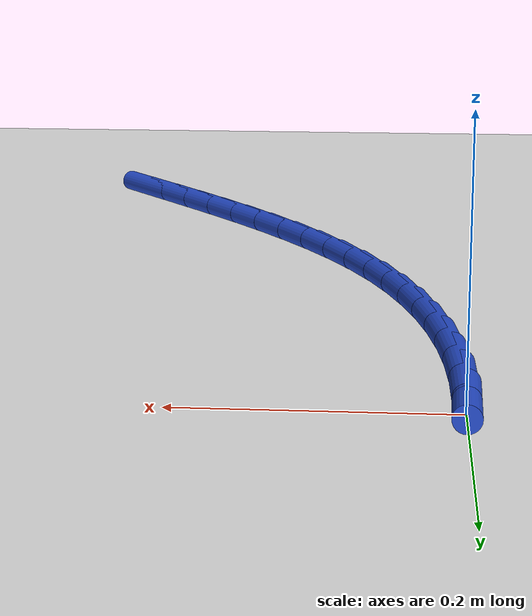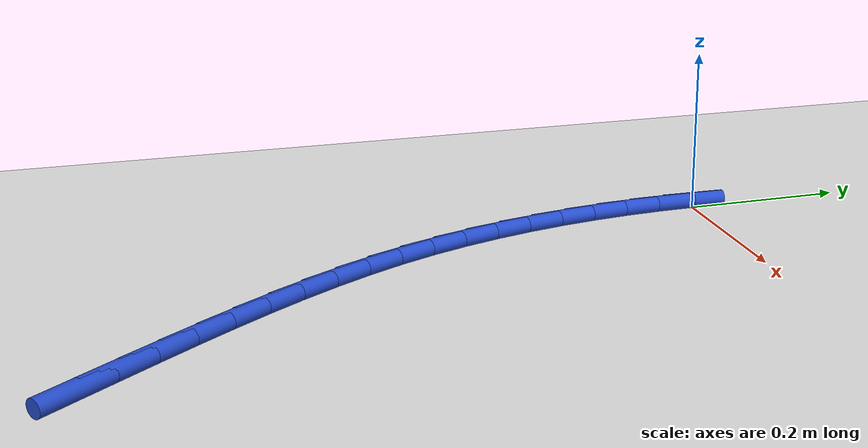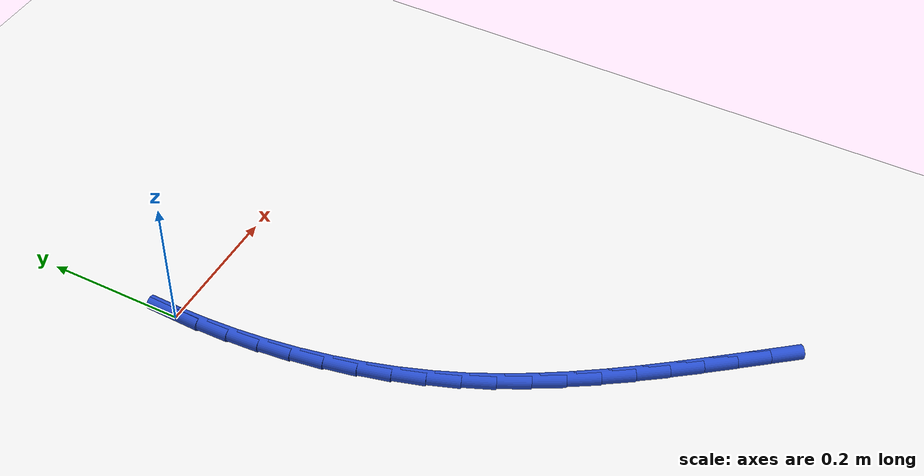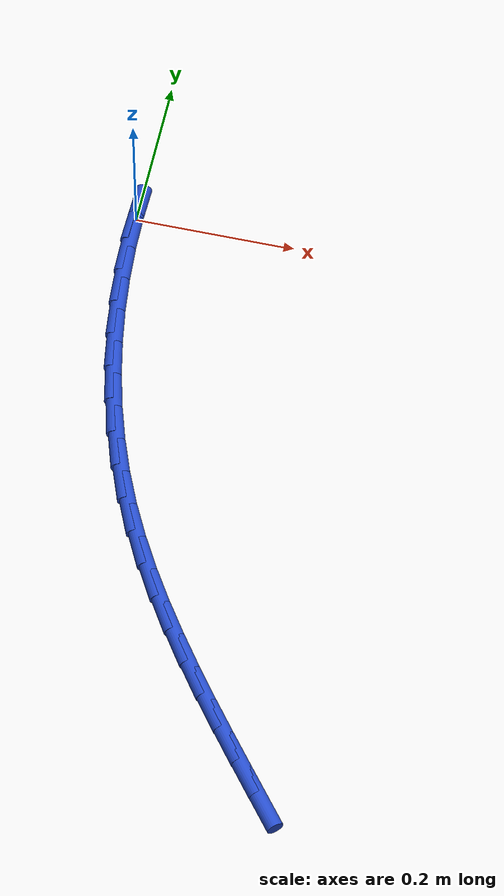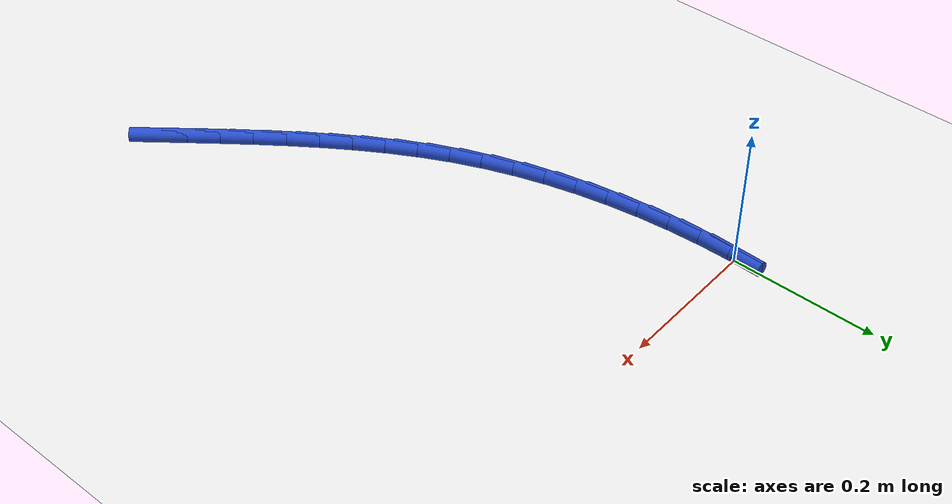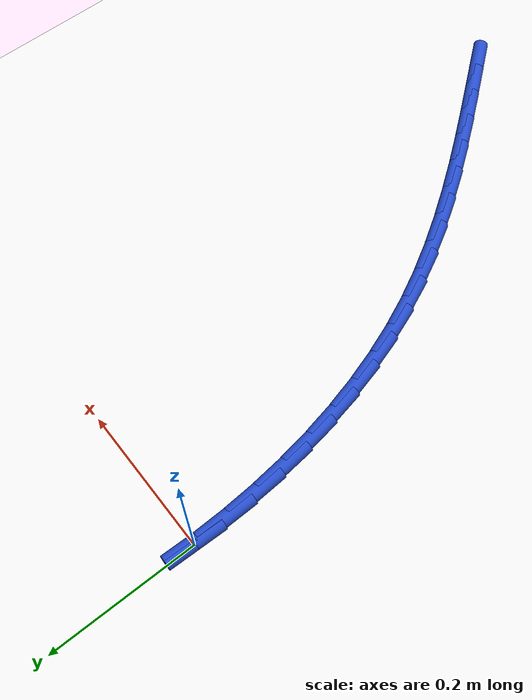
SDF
<sdf version="1.6">
 <world name="default">
  <model name="ground_plane">
   <static>1</static>
   <link name="link">
    <collision name="collision">
     <geometry><plane><normal>0 0 1</normal><size>100 100</size></plane></geometry>
     <surface><friction><ode><mu>100</mu><mu2>50</mu2></ode></friction></surface>
    </collision>
    <visual name="visual">
     <cast_shadows>0</cast_shadows>
     <geometry><plane><normal>0 0 1</normal><size>100 100</size></plane></geometry>
     <material>
      <script><uri>file://media/materials/scripts/gazebo.material</uri><name>Gazebo/WhiteGlow</name></script>
     </material>
    </visual>
   </link>
  </model>
  <model name="line">
   <link name="link_0">
    <pose>2.7755575615628914e-17 -1.3877787807814457e-17 0.01 0 1.57 1.5438039051818868</pose>
    <collision name="collision">
     <geometry><cylinder><radius>0.01</radius><length>0.08</length></cylinder></geometry>
    </collision>
    <visual name="visual">
     <material>
      <script><name>Gazebo/Blue</name><uri>file://media/materials/scripts/gazebo.material</uri></script>
     </material>
     <geometry><cylinder><radius>0.01</radius><length>0.08</length></cylinder></geometry>
    </visual>
   </link>
   <link name="link_142">
    <pose>0.3127293481237154 -0.7317996806258055 0.01 0 1.57 -0.8944440572572239</pose>
    <collision name="collision">
     <geometry><cylinder><radius>0.01</radius><length>0.08</length></cylinder></geometry>
    </collision>
    <visual name="visual">
     <material>
      <script><name>Gazebo/Blue</name><uri>file://media/materials/scripts/gazebo.material</uri></script>
     </material>
     <geometry><cylinder><radius>0.01</radius><length>0.08</length></cylinder></geometry>
    </visual>
   </link>
   <link name="link_143">
    <pose>0.2843956188395142 -0.696499274668905 0.01 0 1.57 -0.8987358303121683</pose>
    <collision name="collision">
     <geometry><cylinder><radius>0.01</radius><length>0.08</length></cylinder></geometry>
    </collision>
    <visual name="visual">
     <material>
      <script><name>Gazebo/Blue</name><uri>file://media/materials/scripts/gazebo.material</uri></script>
     </material>
     <geometry><cylinder><radius>0.01</radius><length>0.08</length></cylinder></geometry>
    </visual>
   </link>
   <link name="link_144">
    <pose>0.2561358350496117 -0.6609797855689025 0.01 0 1.57 -0.9086829677634606</pose>
    <collision name="collision">
     <geometry><cylinder><radius>0.01</radius><length>0.08</length></cylinder></geometry>
    </collision>
    <visual name="visual">
     <material>
      <script><name>Gazebo/Blue</name><uri>file://media/materials/scripts/gazebo.material</uri></script>
     </material>
     <geometry><cylinder><radius>0.01</radius><length>0.08</length></cylinder></geometry>
    </visual>
   </link>
   <link name="link_145">
    <pose>0.22819877582512685 -0.625139921596199 0.01 0 1.57 -0.9249203142168405</pose>
    <collision name="collision">
     <geometry><cylinder><radius>0.01</radius><length>0.08</length></cylinder></geometry>
    </collision>
    <visual name="visual">
     <material>
      <script><name>Gazebo/Blue</name><uri>file://media/materials/scripts/gazebo.material</uri></script>
     </material>
     <geometry><cylinder><radius>0.01</radius><length>0.08</length></cylinder></geometry>
    </visual>
   </link>
   <link name="link_146">
    <pose>0.20085835780369016 -0.5888658254189444 0.01 0 1.57 -0.9475269094579991</pose>
    <collision name="collision">
     <geometry><cylinder><radius>0.01</radius><length>0.08</length></cylinder></geometry>
    </collision>
    <visual name="visual">
     <material>
      <script><name>Gazebo/Blue</name><uri>file://media/materials/scripts/gazebo.material</uri></script>
     </material>
     <geometry><cylinder><radius>0.01</radius><length>0.08</length></cylinder></geometry>
    </visual>
   </link>
   <link name="link_147">
    <pose>0.1743884976229335 -0.5520436397052898 0.01 0 1.57 -0.9766143269794313</pose>
    <collision name="collision">
     <geometry><cylinder><radius>0.01</radius><length>0.08</length></cylinder></geometry>
    </collision>
    <visual name="visual">
     <material>
      <script><name>Gazebo/Blue</name><uri>file://media/materials/scripts/gazebo.material</uri></script>
     </material>
     <geometry><cylinder><radius>0.01</radius><length>0.08</length></cylinder></geometry>
    </visual>
   </link>
   <link name="link_148">
    <pose>0.14906311192048735 -0.5145595071233846 0.01 0 1.57 -1.0122997504820943</pose>
    <collision name="collision">
     <geometry><cylinder><radius>0.01</radius><length>0.08</length></cylinder></geometry>
    </collision>
    <visual name="visual">
     <material>
      <script><name>Gazebo/Blue</name><uri>file://media/materials/scripts/gazebo.material</uri></script>
     </material>
     <geometry><cylinder><radius>0.01</radius><length>0.08</length></cylinder></geometry>
    </visual>
   </link>
   <link name="link_149">
    <pose>0.12515611733398263 -0.476299570341379 0.01 0 1.57 -1.0546691273406208</pose>
    <collision name="collision">
     <geometry><cylinder><radius>0.01</radius><length>0.08</length></cylinder></geometry>
    </collision>
    <visual name="visual">
     <material>
      <script><name>Gazebo/Blue</name><uri>file://media/materials/scripts/gazebo.material</uri></script>
     </material>
     <geometry><cylinder><radius>0.01</radius><length>0.08</length></cylinder></geometry>
    </visual>
   </link>
   <link name="link_150">
    <pose>0.10294143050105034 -0.43714997202742284 0.01 0 1.57 -1.103729619761671</pose>
    <collision name="collision">
     <geometry><cylinder><radius>0.01</radius><length>0.08</length></cylinder></geometry>
    </collision>
    <visual name="visual">
     <material>
      <script><name>Gazebo/Blue</name><uri>file://media/materials/scripts/gazebo.material</uri></script>
     </material>
     <geometry><cylinder><radius>0.01</radius><length>0.08</length></cylinder></geometry>
    </visual>
   </link>
   <link name="link_151">
    <pose>0.08269296805932108 -0.3969968548496659 0.01 0 1.57 -1.1589511922640712</pose>
    <collision name="collision">
     <geometry><cylinder><radius>0.01</radius><length>0.08</length></cylinder></geometry>
    </collision>
    <visual name="visual">
     <material>
      <script><name>Gazebo/Blue</name><uri>file://media/materials/scripts/gazebo.material</uri></script>
     </material>
     <geometry><cylinder><radius>0.01</radius><length>0.08</length></cylinder></geometry>
    </visual>
   </link>
   <link name="link_152">
    <pose>0.06467016585382877 -0.35573837862280666 0.01 0 1.57 -1.2151837644698866</pose>
    <collision name="collision">
     <geometry><cylinder><radius>0.01</radius><length>0.08</length></cylinder></geometry>
    </collision>
    <visual name="visual">
     <material>
      <script><name>Gazebo/Blue</name><uri>file://media/materials/scripts/gazebo.material</uri></script>
     </material>
     <geometry><cylinder><radius>0.01</radius><length>0.08</length></cylinder></geometry>
    </visual>
   </link>
   <link name="link_153">
    <pose>0.04895348907053418 -0.3134212251863721 0.01 0 1.57 -1.2691393803396644</pose>
    <collision name="collision">
     <geometry><cylinder><radius>0.01</radius><length>0.08</length></cylinder></geometry>
    </collision>
    <visual name="visual">
     <material>
      <script><name>Gazebo/Blue</name><uri>file://media/materials/scripts/gazebo.material</uri></script>
     </material>
     <geometry><cylinder><radius>0.01</radius><length>0.08</length></cylinder></geometry>
    </visual>
   </link>
   <link name="link_154">
    <pose>0.03550268066140597 -0.2701922599000681 0.01 0 1.57 -1.3209148009894427</pose>
    <collision name="collision">
     <geometry><cylinder><radius>0.01</radius><length>0.08</length></cylinder></geometry>
    </collision>
    <visual name="visual">
     <material>
      <script><name>Gazebo/Blue</name><uri>file://media/materials/scripts/gazebo.material</uri></script>
     </material>
     <geometry><cylinder><radius>0.01</radius><length>0.08</length></cylinder></geometry>
    </visual>
   </link>
   <link name="link_155">
    <pose>0.024275221589584655 -0.22620022527576997 0.01 0 1.57 -1.370700038289275</pose>
    <collision name="collision">
     <geometry><cylinder><radius>0.01</radius><length>0.08</length></cylinder></geometry>
    </collision>
    <visual name="visual">
     <material>
      <script><name>Gazebo/Blue</name><uri>file://media/materials/scripts/gazebo.material</uri></script>
     </material>
     <geometry><cylinder><radius>0.01</radius><length>0.08</length></cylinder></geometry>
    </visual>
   </link>
   <link name="link_156">
    <pose>0.015228592818210622 -0.18159386382535211 0.01 0 1.57 -1.4187068363530517</pose>
    <collision name="collision">
     <geometry><cylinder><radius>0.01</radius><length>0.08</length></cylinder></geometry>
    </collision>
    <visual name="visual">
     <material>
      <script><name>Gazebo/Blue</name><uri>file://media/materials/scripts/gazebo.material</uri></script>
     </material>
     <geometry><cylinder><radius>0.01</radius><length>0.08</length></cylinder></geometry>
    </visual>
   </link>
   <link name="link_157">
    <pose>0.00832027531042472 -0.1365219180606914 0.01 0 1.57 -1.4651620532241834</pose>
    <collision name="collision">
     <geometry><cylinder><radius>0.01</radius><length>0.08</length></cylinder></geometry>
    </collision>
    <visual name="visual">
     <material>
      <script><name>Gazebo/Blue</name><uri>file://media/materials/scripts/gazebo.material</uri></script>
     </material>
     <geometry><cylinder><radius>0.01</radius><length>0.08</length></cylinder></geometry>
    </visual>
   </link>
   <link name="link_158">
    <pose>0.0035077500293673033 -0.09113313049366231 0.01 0 1.57 -1.510303047068227</pose>
    <collision name="collision">
     <geometry><cylinder><radius>0.01</radius><length>0.08</length></cylinder></geometry>
    </collision>
    <visual name="visual">
     <material>
      <script><name>Gazebo/Blue</name><uri>file://media/materials/scripts/gazebo.material</uri></script>
     </material>
     <geometry><cylinder><radius>0.01</radius><length>0.08</length></cylinder></geometry>
    </visual>
   </link>
   <link name="link_159">
    <pose>0.0007484979381788964 -0.045576243636140025 0.01 0 1.57 -1.5543748186627133</pose>
    <collision name="collision">
     <geometry><cylinder><radius>0.01</radius><length>0.08</length></cylinder></geometry>
    </collision>
    <visual name="visual">
     <material>
      <script><name>Gazebo/Blue</name><uri>file://media/materials/scripts/gazebo.material</uri></script>
     </material>
     <geometry><cylinder><radius>0.01</radius><length>0.08</length></cylinder></geometry>
    </visual>
   </link>
   <link name="link_160">
    <pose>2.0816681711721685e-17 1.8041124150158794e-16 0.01 0 1.57 1.5439640111150374</pose>
    <collision name="collision">
     <geometry><cylinder><radius>0.01</radius><length>0.08</length></cylinder></geometry>
    </collision>
    <visual name="visual">
     <material>
      <script><name>Gazebo/Blue</name><uri>file://media/materials/scripts/gazebo.material</uri></script>
     </material>
     <geometry><cylinder><radius>0.01</radius><length>0.08</length></cylinder></geometry>
    </visual>
   </link>
  </model>
 </world>
</sdf>
